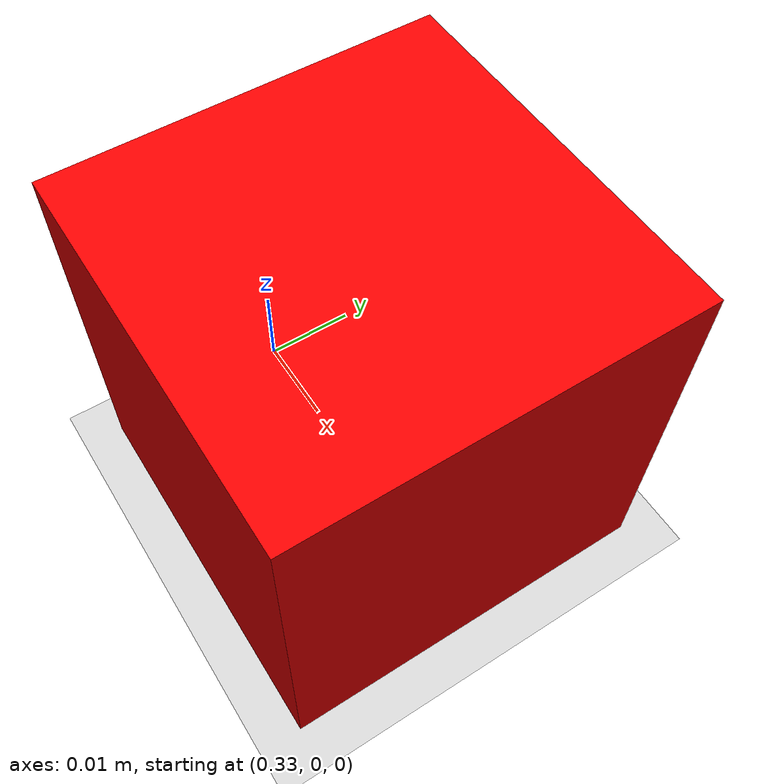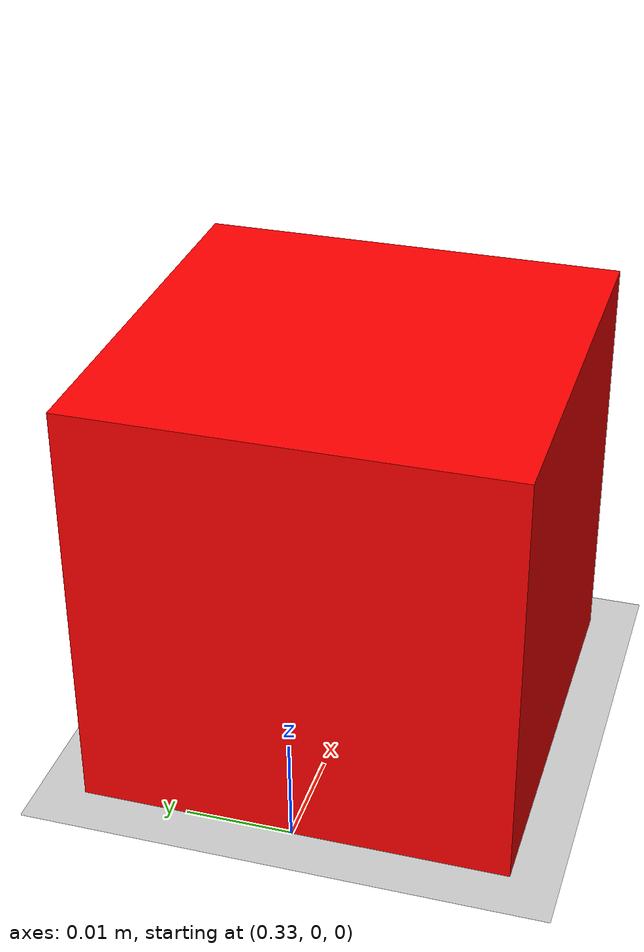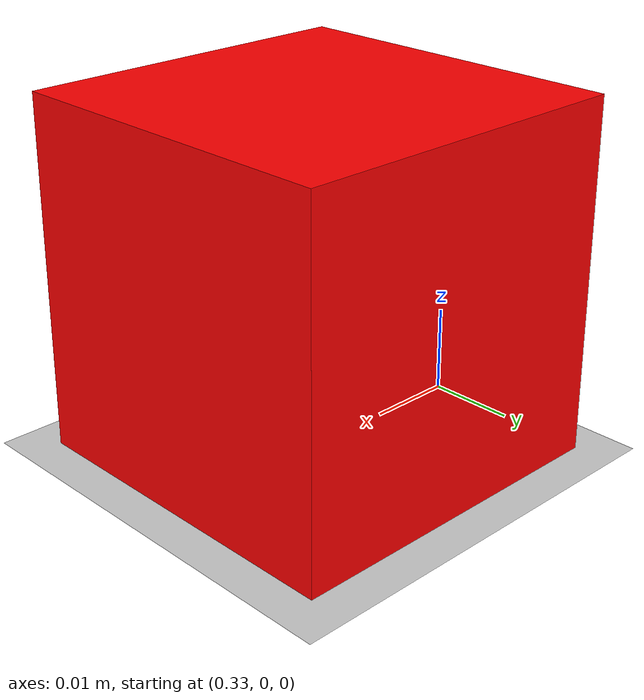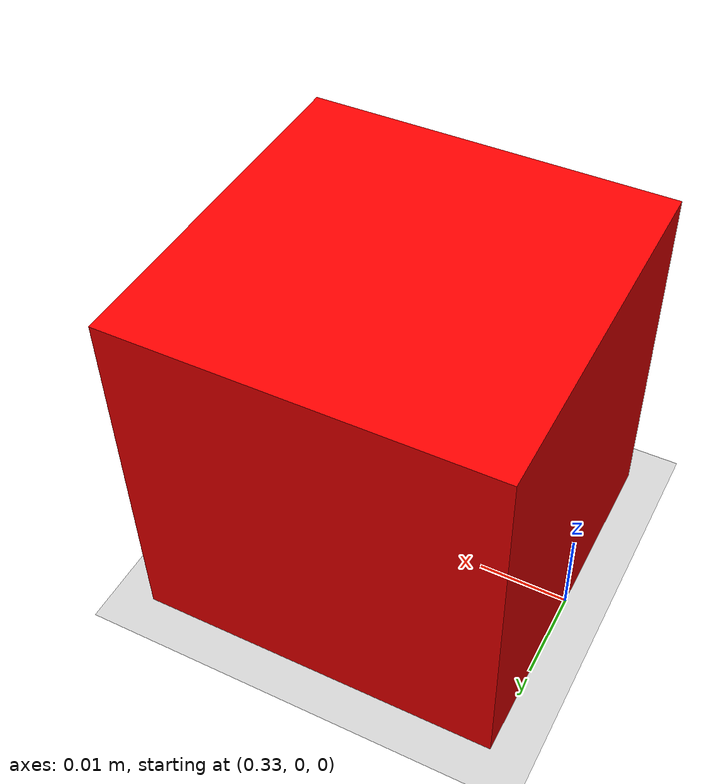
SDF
<sdf version='1.7'>
  <world name='default'>
    <light name='sun' type='directional'>
      <cast_shadows>1</cast_shadows>
      <pose>0 0 10 0 -0 0</pose>
      <diffuse>0.8 0.8 0.8 1</diffuse>
      <specular>0.2 0.2 0.2 1</specular>
      <attenuation>
        <range>1000</range>
        <constant>0.9</constant>
        <linear>0.01</linear>
        <quadratic>0.001</quadratic>
      </attenuation>
      <direction>-0.5 0.1 -0.9</direction>
      <spot>
        <inner_angle>0</inner_angle>
        <outer_angle>0</outer_angle>
        <falloff>0</falloff>
      </spot>
    </light>
    <model name='ground_plane'>
      <static>1</static>
      <link name='link'>
        <collision name='collision'>
          <geometry>
            <plane>
              <normal>0 0 1</normal>
              <size>100 100</size>
            </plane>
          </geometry>
          <surface>
            <contact>
              <collide_bitmask>65535</collide_bitmask>
              <ode/>
            </contact>
            <friction>
              <ode>
                <mu>100</mu>
                <mu2>50</mu2>
              </ode>
              <torsional>
                <ode/>
              </torsional>
            </friction>
            <bounce/>
          </surface>
          <max_contacts>10</max_contacts>
        </collision>
        <visual name='visual'>
          <cast_shadows>0</cast_shadows>
          <geometry>
            <plane>
              <normal>0 0 1</normal>
              <size>100 100</size>
            </plane>
          </geometry>
          <material>
            <script>
              <uri>file://media/materials/scripts/gazebo.material</uri>
              <name>Gazebo/Grey</name>
            </script>
          </material>
        </visual>
        <self_collide>0</self_collide>
        <enable_wind>0</enable_wind>
        <kinematic>0</kinematic>
      </link>
    </model>
    <gravity>0 0 -9.8</gravity>
    <magnetic_field>6e-06 2.3e-05 -4.2e-05</magnetic_field>
    <atmosphere type='adiabatic'/>
    <physics type='ode'>
      <max_step_size>0.001</max_step_size>
      <real_time_factor>1</real_time_factor>
      <real_time_update_rate>1000</real_time_update_rate>
    </physics>
    <scene>
      <ambient>0.4 0.4 0.4 1</ambient>
      <background>0.7 0.7 0.7 1</background>
      <shadows>1</shadows>
    </scene>
    <audio>
      <device>default</device>
    </audio>
    <wind/>
    <spherical_coordinates>
      <surface_model>EARTH_WGS84</surface_model>
      <latitude_deg>0</latitude_deg>
      <longitude_deg>0</longitude_deg>
      <elevation>0</elevation>
      <heading_deg>0</heading_deg>
    </spherical_coordinates>

    <model name='cube'>
      <pose>0.35 0 0.02 0 0 0</pose>
      <link name='link'>
        <inertial>
          <mass>0.05</mass>
          <inertia>
            <ixx>1.33e-5</ixx><iyy>1.33e-5</iyy><izz>1.33e-5</izz>
            <ixy>0</ixy><ixz>0</ixz><iyz>0</iyz>
          </inertia>
        </inertial>
        <collision name='collision'>
          <geometry><box><size>0.04 0.04 0.04</size></box></geometry>
          <surface>
            <friction>
              <ode><mu>1.5</mu><mu2>1.5</mu2></ode>
            </friction>
          </surface>
        </collision>
        <visual name='visual'>
          <geometry><box><size>0.04 0.04 0.04</size></box></geometry>
          <material>
            <ambient>1 0 0 1</ambient>
            <diffuse>1 0 0 1</diffuse>
          </material>
        </visual>
      </link>
    </model>

    <gui fullscreen='0'>
      <camera name='user_camera'>
        <pose>0.520942 -0.119092 0.505495 -0 0.735643 2.12019</pose>
        <view_controller>orbit</view_controller>
        <projection_type>perspective</projection_type>
      </camera>
    </gui>
    <plugin name="gazebo_link_attacher" filename="libgazebo_link_attacher.so"/>

  </world>
</sdf>
